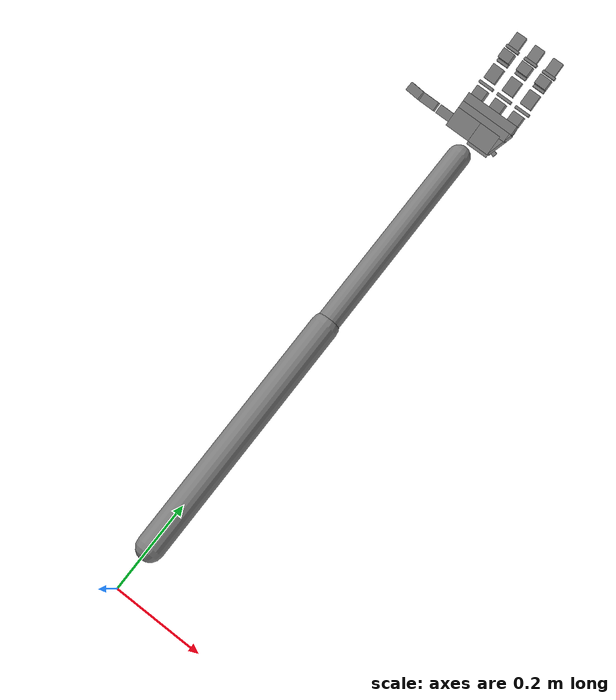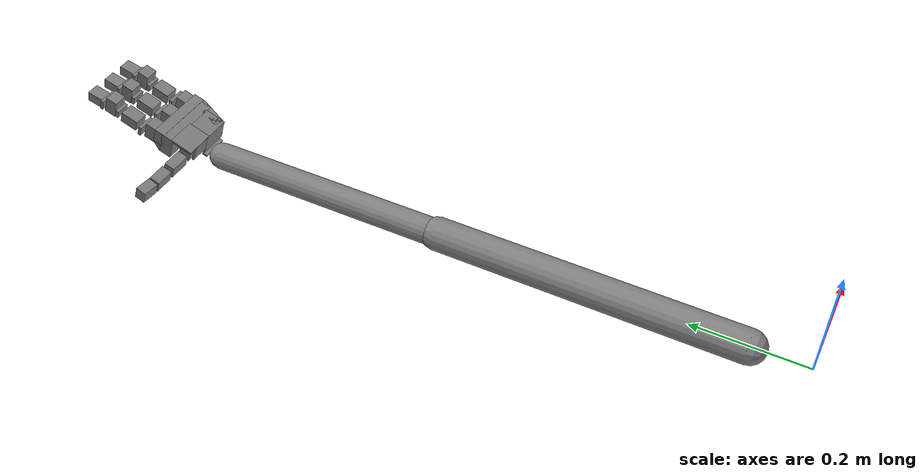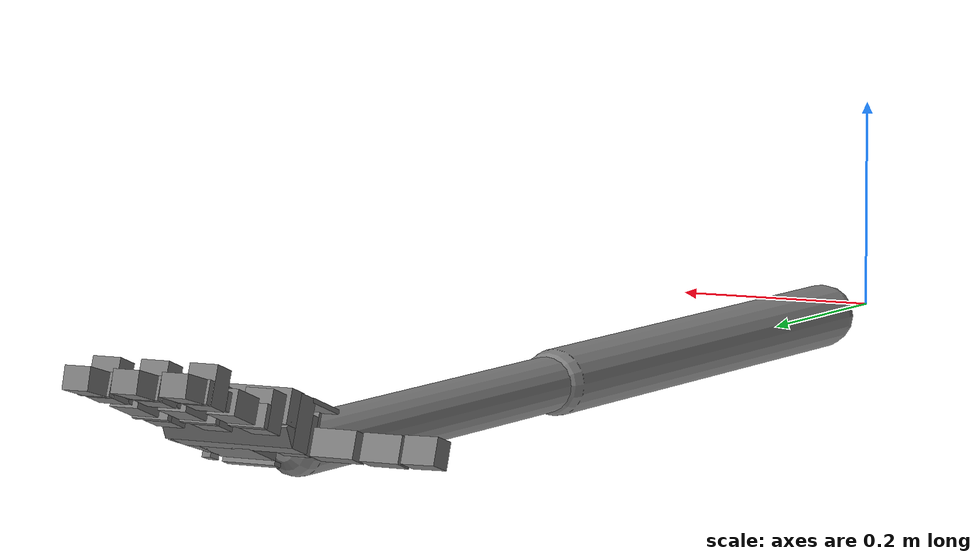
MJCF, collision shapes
<mujoco model="leap_rh">
  <compiler angle="radian" autolimits="true"/>

  <option timestep="0.01" integrator="Euler" iterations="5" ls_iterations="8">
    <flag eulerdamp="disable"/>
  </option>

  <custom>
    <numeric data="30" name="max_contact_points"/>
    <numeric data="12" name="max_geom_pairs"/>
  </custom>

  <asset>
    <material name="black" rgba="0.2 0.2 0.2 1"/>
    <material name="gray" rgba="0.5 0.5 0.5 1"/>
    <mesh name="leap_mount" file="meshes/leap_mount.obj"/>

    <mesh name="palm" file="../../../../external_deps/mujoco_menagerie/leap_hand/assets/palm_right.obj"/>
    <mesh name="base" file="../../../../external_deps/mujoco_menagerie/leap_hand/assets/base.obj"/>
    <mesh name="proximal" file="../../../../external_deps/mujoco_menagerie/leap_hand/assets/proximal.obj"/>
    <mesh name="medial" file="../../../../external_deps/mujoco_menagerie/leap_hand/assets/medial.obj"/>
    <mesh name="distal" file="../../../../external_deps/mujoco_menagerie/leap_hand/assets/distal.obj"/>
    <mesh name="tip" file="../../../../external_deps/mujoco_menagerie/leap_hand/assets/tip.obj"/>
    <mesh name="thumb_base" file="../../../../external_deps/mujoco_menagerie/leap_hand/assets/thumb_base.obj"/>
    <mesh name="thumb_proximal" file="../../../../external_deps/mujoco_menagerie/leap_hand/assets/thumb_proximal.obj"/>
    <mesh name="thumb_distal" file="../../../../external_deps/mujoco_menagerie/leap_hand/assets/thumb_distal.obj"/>
    <mesh name="thumb_tip" file="../../../../external_deps/mujoco_menagerie/leap_hand/assets/thumb_tip.obj"/>
  </asset>

  <default>
    <default class="leap_rh">
      <geom group="3" friction="0.2" solref="0.02 1.5" solimp="0.9 0.99 0.001"/>
      <default class="visual">
        <geom group="2" type="mesh" contype="0" conaffinity="0" density="0" material="black"/>
      </default>
      <default class="tip">
        <geom size="0.01 0.012 0.016" pos="-0.0012969 -0.0335524 0.0145207" quat="0.703552 0.709596 -0.0292107 -0.0252203" type="box" friction="0.7 0.05 0.0002" rgba=".5 .5 .5 .3"/>
      </default>
      <default class="thumb_tip">
        <geom size="0.01 0.012 0.016" pos="-0.00127744 -0.0455619 -0.0144774" quat="0.708101 0.705072 -0.0294902 -0.024426" type="box" friction="0.7 0.05 0.0002" rgba=".5 .5 .5 .3"/>
      </default>

      <position kp="3.0" inheritrange="1"/>
      <!-- armature = rotor inertia * gear ratio^2 = 1.7 * 1e-8 * 288*288 = 0.00149376 -->
      <!-- max torque = 0.2196 = 600/1000*0.366 -->
      <!-- frictionloss = rough guess, small ish value -->
      <joint axis="0 0 -1" damping="0.1" armature="0.001" actuatorfrcrange="-8.0 8.0" frictionloss="0.02"/>

      <default class="mcp">
        <joint range="-0.314 2.23"/>
      </default>
      <default class="rot">
        <joint range="-1.047 1.047"/>
      </default>
      <default class="pip">
        <joint range="-0.506 1.885"/>
      </default>
      <default class="dip">
        <joint range="-0.366 2.042"/>
      </default>
      <default class="thumb_cmc">
        <joint range="-0.349 2.094"/>
      </default>
      <default class="thumb_axl">
        <joint range="-0.349 2.094"/>
      </default>
      <default class="thumb_mcp">
        <joint range="-0.47 2.443"/>
      </default>
      <default class="thumb_ipl">
        <joint range="-1.34 1.88"/>
      </default>
      <default class="shoulder_pitch">
        <joint range="-1.57 1.57" axis="0 0 -1" damping="5" armature="0.1" actuatorfrcrange="-50.0 50.0" frictionloss="0.02"/>
        <position kp="100" kv="10" inheritrange="1"/>
      </default>
      <default class="shoulder_yaw">
        <joint range="-1.57 1.57" axis="0 0 -1" damping="5" armature="0.1" actuatorfrcrange="-50.0 50.0" frictionloss="0.02"/>
        <position kp="100" kv="10" inheritrange="1"/>
      </default>
      <default class="elbow_roll">
        <joint range="-1.57 1.57" axis="0 0 -1" damping="5" armature="0.1" actuatorfrcrange="-40.0 40.0" frictionloss="0.02"/>
        <position kp="80" kv="8" inheritrange="1"/>
      </default>
      <default class="elbow_flexion">
        <joint range="-2.9 0" axis="0 0 -1" damping="5" armature="0.1" actuatorfrcrange="-40.0 40.0" frictionloss="0.02"/>
        <position kp="80" kv="8" inheritrange="1"/>
      </default>
      <default class="wrist_pitch">
        <joint range="-1.57 1.57" axis="0 0 -1" damping="2" armature="0.1" actuatorfrcrange="-30.0 30.0" frictionloss="0.02"/>
        <position kp="50" kv="5" inheritrange="1"/>
      </default>
      <default class="wrist_roll">
        <joint range="-1.57 1.57" axis="0 0 -1" damping="2" armature="0.1" actuatorfrcrange="-30.0 30.0" frictionloss="0.02"/>
        <position kp="50" kv="5" inheritrange="1"/>
      </default>
      <default class="wrist_yaw">
        <joint range="-1.57 1.57" axis="0 0 -1" damping="2" armature="0.1" actuatorfrcrange="-30.0 30.0" frictionloss="0.02"/>
        <position kp="50" kv="5" inheritrange="1"/>
      </default>

    </default>
  </default>

  <contact>
    <!-- filter the palm from all other finger bodies except the tips -->
    <exclude body1="palm" body2="if_bs"/>
    <exclude body1="palm" body2="mf_bs"/>
    <exclude body1="palm" body2="rf_bs"/>
    <exclude body1="palm" body2="th_mp"/>

    <exclude body1="palm" body2="if_px"/>
    <exclude body1="palm" body2="mf_px"/>
    <exclude body1="palm" body2="rf_px"/>
    <exclude body1="palm" body2="th_bs"/>

    <exclude body1="palm" body2="if_md"/>
    <exclude body1="palm" body2="mf_md"/>
    <exclude body1="palm" body2="rf_md"/>
    <exclude body1="palm" body2="th_px"/>

    <!-- filter the mount from all finger bodies except the tips -->
    <exclude body1="leap_mount" body2="if_bs"/>
    <exclude body1="leap_mount" body2="mf_bs"/>
    <exclude body1="leap_mount" body2="rf_bs"/>
    <exclude body1="leap_mount" body2="th_mp"/>

    <exclude body1="leap_mount" body2="if_px"/>
    <exclude body1="leap_mount" body2="mf_px"/>
    <exclude body1="leap_mount" body2="rf_px"/>
    <exclude body1="leap_mount" body2="th_bs"/>

    <exclude body1="leap_mount" body2="if_md"/>
    <exclude body1="leap_mount" body2="mf_md"/>
    <exclude body1="leap_mount" body2="rf_md"/>
    <exclude body1="leap_mount" body2="th_px"/>

    <!-- none of the base fingertip geoms can touch each other -->
    <exclude body1="if_bs" body2="mf_bs"/>
    <exclude body1="if_bs" body2="rf_bs"/>
    <exclude body1="mf_bs" body2="rf_bs"/>

    <exclude body1="th_mp" body2="if_bs"/>
    <exclude body1="th_mp" body2="mf_bs"/>
    <exclude body1="th_mp" body2="rf_bs"/>
  </contact>

  <worldbody>
    <light name="spotlight" mode="targetbodycom" target="palm" pos="3 0 4"/>

    <!-- 7-DoF Humanoid Robot Arm -->
    <body name="shoulder_base" pos="0 0.1 0" childclass="leap_rh" quat="0.5  -0.5   0.5   0.5">
      <!-- Shoulder base is fixed to world (no joint needed) -->

      <!-- All shoulder joints positioned at the base -->
      <body name="shoulder_joints" pos="0 0 0" childclass="leap_rh">
        <!-- Shoulder pitch: forward/backward movement -->
        <!-- Shoulder yaw: side-to-side movement -->
        <joint name="shoulder_yaw_joint" axis="1 0 0" class="shoulder_yaw"/>

        <!-- Upper arm segment -->
        <body name="upper_arm" pos="0 0 0" childclass="leap_rh">
          <inertial pos="0 0 0.275" mass="0.5" diaginertia="0.000407345 0.000304759 0.000180736"/>
          <geom name="upper_arm_geom" type="capsule" size="0.03 0.275" pos="0 0 0.275" quat="1 0 0 0" material="gray" contype="0" conaffinity="0"/>

          <!-- All elbow joints positioned at the elbow -->
          <body name="elbow_joints" pos="0 0 0.55" childclass="leap_rh">
            <!-- Elbow roll: internal/external rotation -->
            <joint name="elbow_roll_joint" axis="0 0 1" class="elbow_roll"/>
            <!-- Elbow pronation: forearm rotation -->
            <joint name="elbow_flexion_joint" axis="1 0 0" class="elbow_flexion"/>

            <!-- Forearm segment -->
            <body name="forearm" pos="0 0 0" childclass="leap_rh">
              <inertial pos="0 0 0.225" mass="0.4" diaginertia="0.000407345 0.000304759 0.000180736"/>
              <geom name="forearm_geom" type="capsule" size="0.025 0.225" pos="0 0 0.225" quat="1 0 0 0" material="gray" contype="0" conaffinity="0"/>

              <!-- All wrist joints positioned at the wrist -->
              <body name="wrist_joints" pos="0 0 0.45" childclass="leap_rh">
                <!-- Wrist pitch: forward/backward hand movement -->
                <joint name="wrist_pitch_joint" axis="0 1 0" class="wrist_pitch"/>
                <!-- Wrist yaw: side-to-side hand movement -->
                <joint name="wrist_yaw_joint" axis="1 0 0" class="wrist_yaw"/>
                <!-- Wrist roll: hand rotation -->
                <joint name="wrist_roll_joint" axis="0 0 1" class="wrist_roll"/>

                <!-- Connect to existing hand structure -->
                <body name="leap_mount" pos="0 0 0" quat="0 1 0 1">
                  <!-- Original leap_mount body content -->
                  <geom name="leap_mount_visual" pos="0 0 0" quat="1 0 0 0" class="visual" mesh="leap_mount"/>
                  <geom name="leap_mount_collision_0" size="0.002 0.025 0.005" pos="0.0405 0.02 0.009"
                    quat="0.57346234 0 0.81923192 0" type="box"/>
                  <geom name="leap_mount_collision_1" size="0.005 0.005 0.005" pos="0.05 0.053 0.002"
                    quat="0.4987168 0.64994038 -0.34910175 0.45495826" type="box"/>
                  <site name="grasp_site" pos="0.11 0.0 0.03" group="4"/>
                  <site name="palm_site" pos="0.11 0.0 0.0" group="4"/>
                  <body name="palm" pos="0.124 -0.0305 -0.06045" quat="0 1 0 -0.175">
                    <inertial pos="-0.049542 -0.042914 -0.010227" quat="0.565586 0.427629 -0.574956 0.408254" mass="0.237"
                      diaginertia="0.000407345 0.000304759 0.000180736"/>
                    <geom name="palm_visual" pos="-0.02 0.02575 -0.0347" quat="1 0 0 0" class="visual" mesh="palm"/>
                    <geom name="palm_collision_1" size="0.011 0.013 0.017" pos="-0.009 0.008 -0.011" type="box"/>
                    <geom name="palm_collision_2" size="0.011 0.013 0.017" pos="-0.009 -0.037 -0.011" type="box"/>
                    <geom name="palm_collision_3" size="0.011 0.013 0.017" pos="-0.009 -0.082 -0.011" type="box"/>
                    <geom name="palm_collision_4" size="0.029 0.01 0.023" pos="-0.066 -0.078 -0.0115" quat="0.989016 0 0 -0.147806" type="box"/>
                    <geom name="palm_collision_5" size="0.01 0.06 0.015" pos="-0.03 -0.035 -0.003" type="box"/>
                    <geom name="palm_collision_6" size="0.005 0.06 0.01" pos="-0.032 -0.035 -0.024" quat="0.923956 0 0.382499 0" type="box"/>
                    <geom name="palm_collision_7" size="0.012 0.058 0.023" pos="-0.048 -0.033 -0.0115" type="box"/>
                    <geom name="palm_collision_8" size="0.022 0.026 0.023" pos="-0.078 -0.053 -0.0115" type="box"/>
                    <geom name="palm_collision_9" size="0.002 0.018 0.017" pos="-0.098 -0.009 -0.006" type="box"/>
                    <geom name="palm_collision_10" size="0.022 0.028 0.002" pos="-0.078 -0.003 0.01" type="box"/>
                    <body name="if_bs" pos="-0.007 0.023 -0.0187" quat="0.5 0.5 0.5 -0.5">
                      <inertial pos="-0.022516 0.033882 0.016359" quat="0.388092 0.677951 -0.247713 0.573067" mass="0.044"
                        diaginertia="1.74972e-05 1.61504e-05 7.21342e-06"/>
                      <joint name="if_mcp" class="mcp"/>
                      <geom name="if_bs_visual" pos="0.0084 0.0077 0.01465" quat="1 0 0 0" class="visual" mesh="base"/>
                      <geom name="if_bs_collision_1" size="0.01 0.003 0.017" pos="0 0.018 0.0147" type="box"/>
                      <body name="if_px" pos="-0.0122 0.0381 0.0145" quat="0.500003 -0.5 -0.499997 0.5">
                        <inertial pos="0.0075 -0.0002 -0.011" quat="0 0.707107 0 0.707107" mass="0.032"
                          diaginertia="4.8853e-06 4.3733e-06 3.0933e-06"/>
                        <joint name="if_rot" class="rot"/>
                        <geom name="if_px_visual" pos="0.0096 0.0002 0.0007" quat="0.500003 -0.5 -0.5 -0.499997" class="visual"
                          mesh="proximal"/>
                        <geom name="if_px_collision" size="0.017 0.013 0.011" pos="0.0075 -0.0002 -0.011" type="box"/>

                        <body name="if_md" pos="0.015 0.0143 -0.013" quat="0.500003 0.5 -0.5 0.499997">
                          <inertial pos="0.0054215 -0.029148 0.015" quat="0.687228 0.687228 0.166487 0.166487" mass="0.037"
                            diaginertia="8.28004e-06 8.1598e-06 5.39516e-06"/>
                          <joint name="if_pip" class="pip"/>
                          <geom name="if_md_visual" pos="0.0211 -0.0084 0.0097" quat="2.67949e-08 -1 0 0" class="visual"
                            mesh="medial"/>
                          <geom name="if_md_collision_1" size="0.008 0.003 0.013" pos="0 -0.02 0.015" type="box"/>
                          <geom name="if_md_collision_5" size="0.017 0.011 0.013" pos="0.0075 -0.035 0.015" type="box"/>
                          <body name="if_ds" pos="0 -0.0361 0.0002">
                            <inertial pos="-0.0008794 -0.027019 0.014594" quat="0.702905 0.710643 -0.0212937 -0.0214203"
                              mass="0.016" diaginertia="3.71863e-06 3.02396e-06 1.6518e-06"/>
                            <joint name="if_dip" class="dip"/>
                            <geom name="if_ds_visual" pos="0.0132 -0.0061 0.0144" quat="2.67949e-08 1 0 0" class="visual"
                              mesh="distal"/>
                            <geom name="if_ds_collision_1" size="0.01 0.003 0.015" pos="0 -0.017 0.015" type="box"/>
                            <geom name="if_tip" class="tip"/>
                            <geom type="mesh" mesh="tip" class="visual" material="gray"/>
                            <site name="if_tip" pos="0 -0.05 0.015" group="4"/>
                          </body>
                        </body>
                      </body>
                    </body>
                    <body name="mf_bs" pos="-0.0071 -0.0224 -0.0187" quat="0.500003 0.5 0.5 -0.499997">
                      <inertial pos="-0.022516 0.033882 0.016359" quat="0.388092 0.677951 -0.247713 0.573067" mass="0.044"
                        diaginertia="1.74972e-05 1.61504e-05 7.21342e-06"/>
                      <joint name="mf_mcp" class="mcp"/>
                      <geom name="mf_bs_visual" pos="0.0084 0.0077 0.01465" quat="1 0 0 0" class="visual" mesh="base"/>
                      <geom name="mf_bs_collision_1" size="0.01 0.003 0.017" pos="0 0.018 0.0147" type="box"/>
                      <body name="mf_px" pos="-0.0122 0.0381 0.0145" quat="0.500003 -0.5 -0.499997 0.5">
                        <inertial pos="0.0075 -0.0002 -0.011" quat="0 0.707107 0 0.707107" mass="0.032"
                          diaginertia="4.8853e-06 4.3733e-06 3.0933e-06"/>
                        <joint name="mf_rot" class="rot"/>
                        <geom name="mf_px_visual" pos="0.0096 0.0003 0.0007" quat="0.500003 -0.5 -0.5 -0.499997" class="visual"
                          mesh="proximal"/>
                        <geom name="mf_px_collision" size="0.017 0.013 0.011" pos="0.0075 -0.0002 -0.011" type="box"/>
                        <body name="mf_md" pos="0.015 0.0143 -0.013" quat="0.500003 0.5 -0.5 0.499997">
                          <inertial pos="0.0054215 -0.029148 0.015" quat="0.687228 0.687228 0.166487 0.166487" mass="0.037"
                            diaginertia="8.28004e-06 8.1598e-06 5.39516e-06"/>
                          <joint name="mf_pip" class="pip"/>
                          <geom name="mf_md_visual" pos="0.0211 -0.0084 0.0097" quat="1.32679e-06 -1 0 0" class="visual"
                            mesh="medial"/>
                          <geom name="mf_md_collision_1" size="0.008 0.003 0.013" pos="0 -0.02 0.015" type="box"/>
                          <geom name="mf_md_collision_5" size="0.017 0.011 0.013" pos="0.0075 -0.035 0.015" type="box"/>
                          <body name="mf_ds" pos="0 -0.0361 0.0002">
                            <inertial pos="-0.0008794 -0.027019 0.014594" quat="0.702905 0.710643 -0.0212937 -0.0214203"
                              mass="0.016" diaginertia="3.71863e-06 3.02396e-06 1.6518e-06"/>
                            <joint name="mf_dip" class="dip"/>
                            <geom name="mf_ds_visual" pos="0.0132 -0.0061 0.0145" quat="1.32679e-06 1 0 0" class="visual"
                              mesh="distal"/>
                            <geom name="mf_ds_collision_1" size="0.01 0.003 0.015" pos="0 -0.017 0.015" type="box"/>
                            <geom name="mf_tip" class="tip"/>
                            <geom type="mesh" mesh="tip" class="visual" material="gray"/>
                            <site name="mf_tip" pos="0 -0.05 0.015" group="4"/>
                          </body>
                        </body>
                      </body>
                    </body>
                    <body name="rf_bs" pos="-0.00709 -0.0678 -0.0187" quat="0.500003 0.5 0.5 -0.499997">
                      <inertial pos="-0.022516 0.033882 0.016359" quat="0.388092 0.677951 -0.247713 0.573067" mass="0.044"
                        diaginertia="1.74972e-05 1.61504e-05 7.21342e-06"/>
                      <joint name="rf_mcp" class="mcp"/>
                      <geom name="rf_bs_visual" pos="0.0084 0.0077 0.01465" quat="1 0 0 0" class="visual" mesh="base"/>
                      <geom name="rf_bs_collision_1" size="0.01 0.003 0.017" pos="0 0.018 0.0147" type="box"/>
                      <body name="rf_px" pos="-0.0122 0.0381 0.0145" quat="0.500003 -0.5 -0.499997 0.5">
                        <inertial pos="0.0075 -0.0002 -0.011" quat="0 0.707107 0 0.707107" mass="0.032"
                          diaginertia="4.8853e-06 4.3733e-06 3.0933e-06"/>
                        <joint name="rf_rot" class="rot"/>
                        <geom name="rf_px_visual" pos="0.0096 0.0003 0.0007" quat="0.500003 -0.5 -0.5 -0.499997" class="visual"
                          mesh="proximal"/>
                        <geom name="rf_px_collision" size="0.017 0.013 0.011" pos="0.0075 -0.0002 -0.011" type="box"/>
                        <body name="rf_md" pos="0.015 0.0143 -0.013" quat="0.500003 0.5 -0.5 0.499997">
                          <inertial pos="0.0054215 -0.029148 0.015" quat="0.687228 0.687228 0.166487 0.166487" mass="0.037"
                            diaginertia="8.28004e-06 8.1598e-06 5.39516e-06"/>
                          <joint name="rf_pip" class="pip"/>
                          <geom name="rf_md_visual" pos="0.0211 -0.0084 0.0097" quat="0 -1 0 0" class="visual" mesh="medial"/>
                          <geom name="rf_md_collision_1" size="0.008 0.003 0.013" pos="0 -0.02 0.015" type="box"/>
                          <geom name="rf_md_collision_5" size="0.017 0.011 0.013" pos="0.0075 -0.035 0.015" type="box"/>
                          <body name="rf_ds" pos="0 -0.03609 0.0002">
                            <inertial pos="-0.0008794 -0.027019 0.014594" quat="0.702905 0.710643 -0.0212937 -0.0214203"
                              mass="0.016" diaginertia="3.71863e-06 3.02396e-06 1.6518e-06"/>
                            <joint name="rf_dip" class="dip"/>
                            <geom name="rf_ds_visual" pos="0.0132 -0.0061 0.0145" quat="0 1 0 0" class="visual" mesh="distal"/>
                            <geom name="rf_ds_collision_1" size="0.01 0.003 0.015" pos="0 -0.017 0.015" type="box"/>
                            <geom name="rf_tip" class="tip"/>
                            <geom type="mesh" mesh="tip" class="visual" material="gray"/>
                            <site name="rf_tip" pos="0 -0.05 0.015" group="4"/>
                          </body>
                        </body>
                      </body>
                    </body>
                    <body name="th_mp" pos="-0.0693 -0.0012 -0.0216" quat="0.707109 0 0.707105 0">
                      <inertial pos="0.0075 -0.0002 -0.011" quat="0 0.707107 0 0.707107" mass="0.032"
                        diaginertia="4.8853e-06 4.3733e-06 3.0933e-06"/>
                      <joint name="th_cmc" class="thumb_cmc"/>
                      <geom name="th_mp_visual" pos="-0.0053 0.0003 0.00078" quat="0.500003 -0.5 -0.5 -0.499997" class="visual"
                        mesh="proximal"/>
                      <geom name="th_mp_collision" size="0.017 0.013 0.011" pos="-0.0075 -0.0002 -0.011" type="box"/>
                      <body name="th_bs" pos="0 0.0143 -0.013" quat="0.500003 0.5 -0.5 0.499997">
                        <inertial pos="0 0 -0.0070806" quat="0.707107 0.707107 0 0" mass="0.003"
                          diaginertia="6.1932e-07 5.351e-07 2.1516e-07"/>
                        <joint name="th_axl" class="thumb_axl"/>
                        <geom name="th_bs_collision_1" pos="0.01196 0 -0.0158" quat="0.707109 0.707105 0 0" class="visual" mesh="thumb_base"/>
                        <body name="th_px" pos="0 0.0145 -0.017" quat="0.707109 -0.707105 0 0">
                          <inertial pos="-0.0020593 0.015912 -0.013733" quat="0.698518 0.697382 -0.104933 0.121324" mass="0.038"
                            diaginertia="9.87104e-06 9.32653e-06 4.36203e-06"/>
                          <joint name="th_mcp" class="thumb_mcp"/>
                          <geom name="th_px_visual" pos="0.0439 0.0579 -0.0086" quat="1 0 0 0" class="visual" mesh="thumb_proximal"/>
                          <geom name="th_px_collision_1" size="0.01 0.02 0.012" pos="0 0.0105 -0.014" type="box"/>
                          <body name="th_ds" pos="0 0.0466 0.0002" quat="1.32679e-06 0 0 1">
                            <inertial pos="0.00096191 -0.024203 -0.014419" quat="0.35287 0.311272 -0.632839 0.614904" mass="0.049"
                              diaginertia="2.08591e-05 2.0402e-05 4.71335e-06"/>
                            <joint name="th_ipl" class="thumb_ipl"/>
                            <geom name="th_ds_visual" pos="0.0625 0.0784 0.0489" quat="1 0 0 0" class="visual" mesh="thumb_distal"/>
                            <geom name="th_ds_collision_1" size="0.01 0.018 0.012" pos="0 -0.0085 -0.015" type="box"/>
                            <geom name="th_tip" class="thumb_tip"/>
                            <site name="th_tip" pos="0 -0.06 -0.015" group="4"/>
                            <geom type="mesh" mesh="thumb_tip" class="visual" material="gray"/>
                          </body>
                        </body>
                      </body>
                    </body>
                  </body>
                </body>
              </body>
            </body>
          </body>
        </body>
      </body>
    </body>
  </worldbody>

  <actuator>
    <!-- Arm actuators (6 DoF) - shoulder_pitch_joint exists but is not controlled -->
    <position name="shoulder_yaw_act" joint="shoulder_yaw_joint" class="shoulder_yaw"/>
    <position name="elbow_roll_act" joint="elbow_roll_joint" class="elbow_roll"/>
    <position name="elbow_flexion_act" joint="elbow_flexion_joint" class="elbow_flexion"/>
    <position name="wrist_pitch_act" joint="wrist_pitch_joint" class="wrist_pitch"/>
    <position name="wrist_yaw_act" joint="wrist_yaw_joint" class="wrist_yaw"/>
    <position name="wrist_roll_act" joint="wrist_roll_joint" class="wrist_roll"/>

    <!-- Hand actuators -->
    <position name="if_mcp_act" joint="if_mcp" class="mcp"/>
    <position name="if_rot_act" joint="if_rot" class="rot"/>
    <position name="if_pip_act" joint="if_pip" class="pip"/>
    <position name="if_dip_act" joint="if_dip" class="dip"/>
    <position name="mf_mcp_act" joint="mf_mcp" class="mcp"/>
    <position name="mf_rot_act" joint="mf_rot" class="rot"/>
    <position name="mf_pip_act" joint="mf_pip" class="pip"/>
    <position name="mf_dip_act" joint="mf_dip" class="dip"/>
    <position name="rf_mcp_act" joint="rf_mcp" class="mcp"/>
    <position name="rf_rot_act" joint="rf_rot" class="rot"/>
    <position name="rf_pip_act" joint="rf_pip" class="pip"/>
    <position name="rf_dip_act" joint="rf_dip" class="dip"/>
    <position name="th_cmc_act" joint="th_cmc" class="thumb_cmc"/>
    <position name="th_axl_act" joint="th_axl" class="thumb_axl"/>
    <position name="th_mcp_act" joint="th_mcp" class="thumb_mcp"/>
    <position name="th_ipl_act" joint="th_ipl" class="thumb_ipl"/>
  </actuator>
</mujoco>
